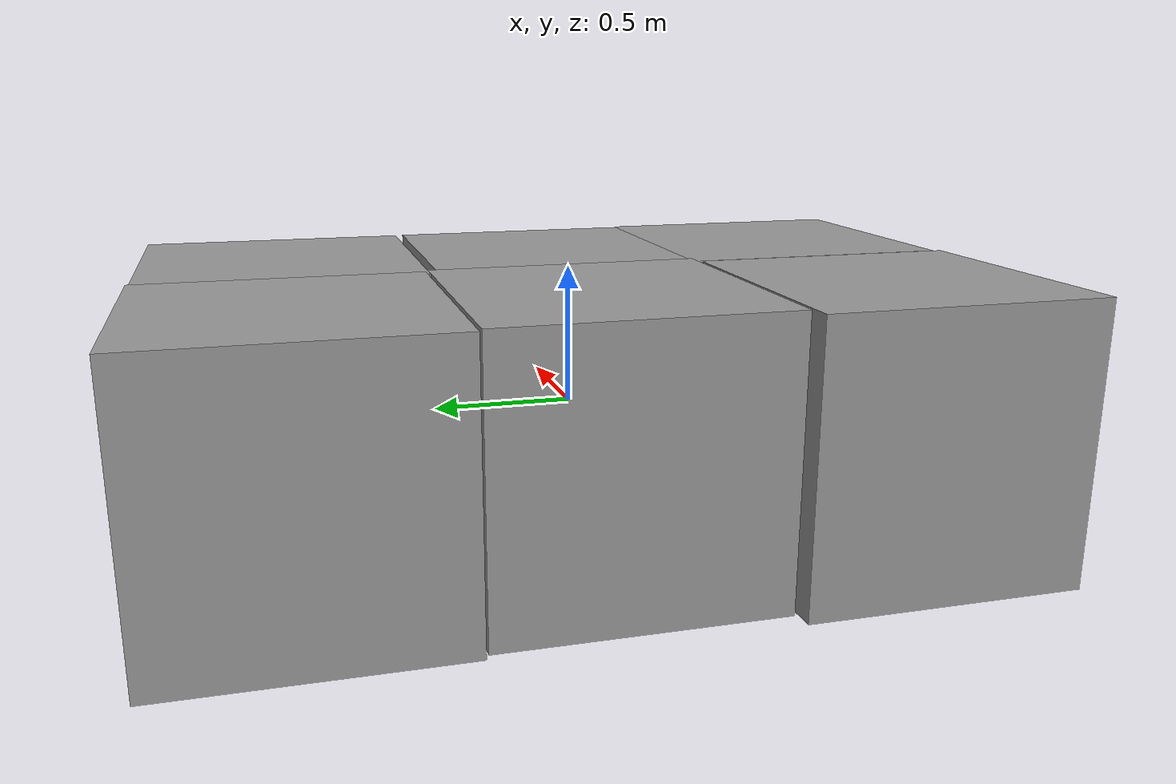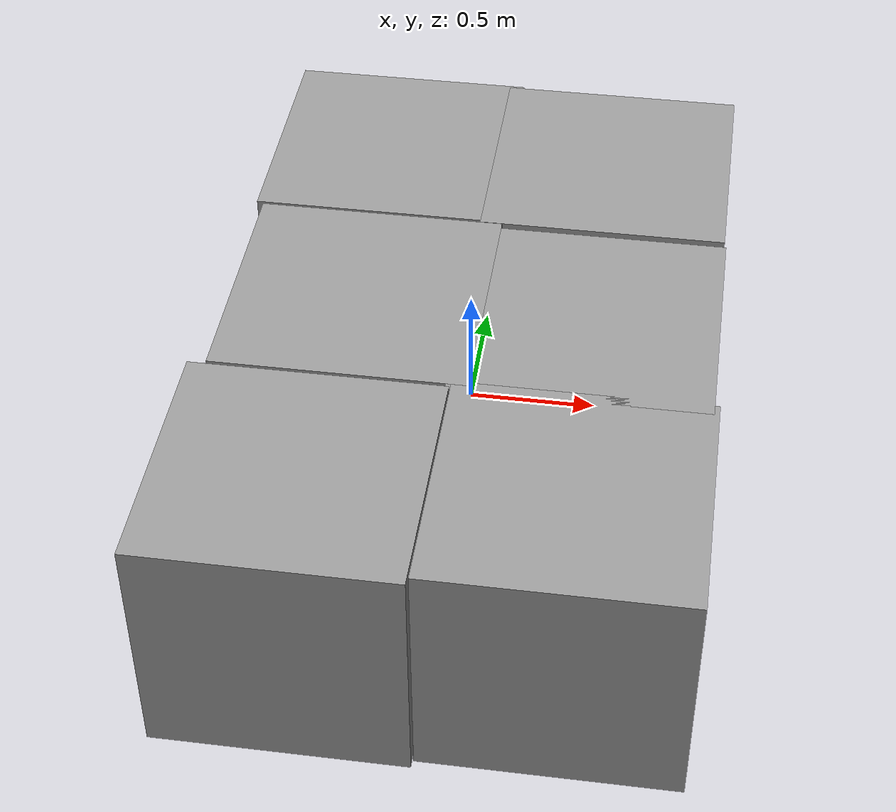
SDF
<?xml version='1.0'?>
<sdf version='1.7'>
  <model name='obj'>
    <link name='link_0'>
      <inertial>
        <mass>1</mass>
        <inertia>
          <ixx>0.166667</ixx>
          <ixy>0</ixy>
          <ixz>0</ixz>
          <iyy>0.166667</iyy>
          <iyz>0</iyz>
          <izz>0.166667</izz>
        </inertia>
      </inertial>
      <pose>-0.471707 1.01382 0 0 -0 0</pose>
      <visual name='visual'>
        <pose>0 0 0 0 -0 0</pose>
        <geometry>
          <box>
            <size>1 1 1</size>
          </box>
        </geometry>
        <material>
          <lighting>1</lighting>
          <script>
            <uri>file://media/materials/scripts/gazebo.material</uri>
            <name>Gazebo/Grey</name>
          </script>
          <shader type='pixel'/>
        </material>
        <transparency>0</transparency>
        <cast_shadows>1</cast_shadows>
      </visual>
      <collision name='collision'>
        <laser_retro>0</laser_retro>
        <max_contacts>10</max_contacts>
        <pose>0 0 0 0 -0 0</pose>
        <geometry>
          <box>
            <size>1 1 1</size>
          </box>
        </geometry>
        <surface>
          <friction>
            <ode>
              <mu>1</mu>
              <mu2>1</mu2>
              <fdir1>0 0 0</fdir1>
              <slip1>0</slip1>
              <slip2>0</slip2>
            </ode>
            <torsional>
              <coefficient>1</coefficient>
              <patch_radius>0</patch_radius>
              <surface_radius>0</surface_radius>
              <use_patch_radius>1</use_patch_radius>
              <ode>
                <slip>0</slip>
              </ode>
            </torsional>
          </friction>
          <bounce>
            <restitution_coefficient>0</restitution_coefficient>
            <threshold>1e+06</threshold>
          </bounce>
          <contact>
            <collide_without_contact>0</collide_without_contact>
            <collide_without_contact_bitmask>1</collide_without_contact_bitmask>
            <collide_bitmask>1</collide_bitmask>
            <ode>
              <soft_cfm>0</soft_cfm>
              <soft_erp>0.2</soft_erp>
              <kp>1e+13</kp>
              <kd>1</kd>
              <max_vel>0.01</max_vel>
              <min_depth>0</min_depth>
            </ode>
            <bullet>
              <split_impulse>1</split_impulse>
              <split_impulse_penetration_threshold>-0.01</split_impulse_penetration_threshold>
              <soft_cfm>0</soft_cfm>
              <soft_erp>0.2</soft_erp>
              <kp>1e+13</kp>
              <kd>1</kd>
            </bullet>
          </contact>
        </surface>
      </collision>
    </link>
    <link name='link_1'>
      <inertial>
        <mass>1</mass>
        <inertia>
          <ixx>0.166667</ixx>
          <ixy>0</ixy>
          <ixz>0</ixz>
          <iyy>0.166667</iyy>
          <iyz>0</iyz>
          <izz>0.166667</izz>
        </inertia>
      </inertial>
      <pose>0.465424 1.004 0 0 -0 0</pose>
      <visual name='visual'>
        <pose>0 0 0 0 -0 0</pose>
        <geometry>
          <box>
            <size>1 1 1</size>
          </box>
        </geometry>
        <material>
          <lighting>1</lighting>
          <script>
            <uri>file://media/materials/scripts/gazebo.material</uri>
            <name>Gazebo/Grey</name>
          </script>
          <shader type='pixel'/>
        </material>
        <transparency>0</transparency>
        <cast_shadows>1</cast_shadows>
      </visual>
      <collision name='collision'>
        <laser_retro>0</laser_retro>
        <max_contacts>10</max_contacts>
        <pose>0 0 0 0 -0 0</pose>
        <geometry>
          <box>
            <size>1 1 1</size>
          </box>
        </geometry>
        <surface>
          <friction>
            <ode>
              <mu>1</mu>
              <mu2>1</mu2>
              <fdir1>0 0 0</fdir1>
              <slip1>0</slip1>
              <slip2>0</slip2>
            </ode>
            <torsional>
              <coefficient>1</coefficient>
              <patch_radius>0</patch_radius>
              <surface_radius>0</surface_radius>
              <use_patch_radius>1</use_patch_radius>
              <ode>
                <slip>0</slip>
              </ode>
            </torsional>
          </friction>
          <bounce>
            <restitution_coefficient>0</restitution_coefficient>
            <threshold>1e+06</threshold>
          </bounce>
          <contact>
            <collide_without_contact>0</collide_without_contact>
            <collide_without_contact_bitmask>1</collide_without_contact_bitmask>
            <collide_bitmask>1</collide_bitmask>
            <ode>
              <soft_cfm>0</soft_cfm>
              <soft_erp>0.2</soft_erp>
              <kp>1e+13</kp>
              <kd>1</kd>
              <max_vel>0.01</max_vel>
              <min_depth>0</min_depth>
            </ode>
            <bullet>
              <split_impulse>1</split_impulse>
              <split_impulse_penetration_threshold>-0.01</split_impulse_penetration_threshold>
              <soft_cfm>0</soft_cfm>
              <soft_erp>0.2</soft_erp>
              <kp>1e+13</kp>
              <kd>1</kd>
            </bullet>
          </contact>
        </surface>
      </collision>
    </link>
    <link name='link_2'>
      <inertial>
        <mass>1</mass>
        <inertia>
          <ixx>0.166667</ixx>
          <ixy>0</ixy>
          <ixz>0</ixz>
          <iyy>0.166667</iyy>
          <iyz>0</iyz>
          <izz>0.166667</izz>
        </inertia>
      </inertial>
      <pose>-0.44347 0.001903 0 0 -0 0</pose>
      <visual name='visual'>
        <pose>0 0 0 0 -0 0</pose>
        <geometry>
          <box>
            <size>1 1 1</size>
          </box>
        </geometry>
        <material>
          <lighting>1</lighting>
          <script>
            <uri>file://media/materials/scripts/gazebo.material</uri>
            <name>Gazebo/Grey</name>
          </script>
          <shader type='pixel'/>
        </material>
        <transparency>0</transparency>
        <cast_shadows>1</cast_shadows>
      </visual>
      <collision name='collision'>
        <laser_retro>0</laser_retro>
        <max_contacts>10</max_contacts>
        <pose>0 0 0 0 -0 0</pose>
        <geometry>
          <box>
            <size>1 1 1</size>
          </box>
        </geometry>
        <surface>
          <friction>
            <ode>
              <mu>1</mu>
              <mu2>1</mu2>
              <fdir1>0 0 0</fdir1>
              <slip1>0</slip1>
              <slip2>0</slip2>
            </ode>
            <torsional>
              <coefficient>1</coefficient>
              <patch_radius>0</patch_radius>
              <surface_radius>0</surface_radius>
              <use_patch_radius>1</use_patch_radius>
              <ode>
                <slip>0</slip>
              </ode>
            </torsional>
          </friction>
          <bounce>
            <restitution_coefficient>0</restitution_coefficient>
            <threshold>1e+06</threshold>
          </bounce>
          <contact>
            <collide_without_contact>0</collide_without_contact>
            <collide_without_contact_bitmask>1</collide_without_contact_bitmask>
            <collide_bitmask>1</collide_bitmask>
            <ode>
              <soft_cfm>0</soft_cfm>
              <soft_erp>0.2</soft_erp>
              <kp>1e+13</kp>
              <kd>1</kd>
              <max_vel>0.01</max_vel>
              <min_depth>0</min_depth>
            </ode>
            <bullet>
              <split_impulse>1</split_impulse>
              <split_impulse_penetration_threshold>-0.01</split_impulse_penetration_threshold>
              <soft_cfm>0</soft_cfm>
              <soft_erp>0.2</soft_erp>
              <kp>1e+13</kp>
              <kd>1</kd>
            </bullet>
          </contact>
        </surface>
      </collision>
    </link>
    <link name='link_3'>
      <inertial>
        <mass>1</mass>
        <inertia>
          <ixx>0.166667</ixx>
          <ixy>0</ixy>
          <ixz>0</ixz>
          <iyy>0.166667</iyy>
          <iyz>0</iyz>
          <izz>0.166667</izz>
        </inertia>
      </inertial>
      <pose>0.471987 -0.027068 0 0 -0 0</pose>
      <visual name='visual'>
        <pose>0 0 0 0 -0 0</pose>
        <geometry>
          <box>
            <size>1 1 1</size>
          </box>
        </geometry>
        <material>
          <lighting>1</lighting>
          <script>
            <uri>file://media/materials/scripts/gazebo.material</uri>
            <name>Gazebo/Grey</name>
          </script>
          <shader type='pixel'/>
        </material>
        <transparency>0</transparency>
        <cast_shadows>1</cast_shadows>
      </visual>
      <collision name='collision'>
        <laser_retro>0</laser_retro>
        <max_contacts>10</max_contacts>
        <pose>0 0 0 0 -0 0</pose>
        <geometry>
          <box>
            <size>1 1 1</size>
          </box>
        </geometry>
        <surface>
          <friction>
            <ode>
              <mu>1</mu>
              <mu2>1</mu2>
              <fdir1>0 0 0</fdir1>
              <slip1>0</slip1>
              <slip2>0</slip2>
            </ode>
            <torsional>
              <coefficient>1</coefficient>
              <patch_radius>0</patch_radius>
              <surface_radius>0</surface_radius>
              <use_patch_radius>1</use_patch_radius>
              <ode>
                <slip>0</slip>
              </ode>
            </torsional>
          </friction>
          <bounce>
            <restitution_coefficient>0</restitution_coefficient>
            <threshold>1e+06</threshold>
          </bounce>
          <contact>
            <collide_without_contact>0</collide_without_contact>
            <collide_without_contact_bitmask>1</collide_without_contact_bitmask>
            <collide_bitmask>1</collide_bitmask>
            <ode>
              <soft_cfm>0</soft_cfm>
              <soft_erp>0.2</soft_erp>
              <kp>1e+13</kp>
              <kd>1</kd>
              <max_vel>0.01</max_vel>
              <min_depth>0</min_depth>
            </ode>
            <bullet>
              <split_impulse>1</split_impulse>
              <split_impulse_penetration_threshold>-0.01</split_impulse_penetration_threshold>
              <soft_cfm>0</soft_cfm>
              <soft_erp>0.2</soft_erp>
              <kp>1e+13</kp>
              <kd>1</kd>
            </bullet>
          </contact>
        </surface>
      </collision>
    </link>
    <link name='link_4'>
      <inertial>
        <mass>1</mass>
        <inertia>
          <ixx>0.166667</ixx>
          <ixy>0</ixy>
          <ixz>0</ixz>
          <iyy>0.166667</iyy>
          <iyz>0</iyz>
          <izz>0.166667</izz>
        </inertia>
      </inertial>
      <pose>0.491477 -0.981236 0 0 -0 0</pose>
      <visual name='visual'>
        <pose>0 0 0 0 -0 0</pose>
        <geometry>
          <box>
            <size>1 1 1</size>
          </box>
        </geometry>
        <material>
          <lighting>1</lighting>
          <script>
            <uri>file://media/materials/scripts/gazebo.material</uri>
            <name>Gazebo/Grey</name>
          </script>
          <shader type='pixel'/>
        </material>
        <transparency>0</transparency>
        <cast_shadows>1</cast_shadows>
      </visual>
      <collision name='collision'>
        <laser_retro>0</laser_retro>
        <max_contacts>10</max_contacts>
        <pose>0 0 0 0 -0 0</pose>
        <geometry>
          <box>
            <size>1 1 1</size>
          </box>
        </geometry>
        <surface>
          <friction>
            <ode>
              <mu>1</mu>
              <mu2>1</mu2>
              <fdir1>0 0 0</fdir1>
              <slip1>0</slip1>
              <slip2>0</slip2>
            </ode>
            <torsional>
              <coefficient>1</coefficient>
              <patch_radius>0</patch_radius>
              <surface_radius>0</surface_radius>
              <use_patch_radius>1</use_patch_radius>
              <ode>
                <slip>0</slip>
              </ode>
            </torsional>
          </friction>
          <bounce>
            <restitution_coefficient>0</restitution_coefficient>
            <threshold>1e+06</threshold>
          </bounce>
          <contact>
            <collide_without_contact>0</collide_without_contact>
            <collide_without_contact_bitmask>1</collide_without_contact_bitmask>
            <collide_bitmask>1</collide_bitmask>
            <ode>
              <soft_cfm>0</soft_cfm>
              <soft_erp>0.2</soft_erp>
              <kp>1e+13</kp>
              <kd>1</kd>
              <max_vel>0.01</max_vel>
              <min_depth>0</min_depth>
            </ode>
            <bullet>
              <split_impulse>1</split_impulse>
              <split_impulse_penetration_threshold>-0.01</split_impulse_penetration_threshold>
              <soft_cfm>0</soft_cfm>
              <soft_erp>0.2</soft_erp>
              <kp>1e+13</kp>
              <kd>1</kd>
            </bullet>
          </contact>
        </surface>
      </collision>
    </link>
    <link name='link_5'>
      <inertial>
        <mass>1</mass>
        <inertia>
          <ixx>0.166667</ixx>
          <ixy>0</ixy>
          <ixz>0</ixz>
          <iyy>0.166667</iyy>
          <iyz>0</iyz>
          <izz>0.166667</izz>
        </inertia>
      </inertial>
      <pose>-0.513714 -1.01141 0 0 -0 0</pose>
      <visual name='visual'>
        <pose>0 0 0 0 -0 0</pose>
        <geometry>
          <box>
            <size>1 1 1</size>
          </box>
        </geometry>
        <material>
          <lighting>1</lighting>
          <script>
            <uri>file://media/materials/scripts/gazebo.material</uri>
            <name>Gazebo/Grey</name>
          </script>
          <shader type='pixel'/>
        </material>
        <transparency>0</transparency>
        <cast_shadows>1</cast_shadows>
      </visual>
      <collision name='collision'>
        <laser_retro>0</laser_retro>
        <max_contacts>10</max_contacts>
        <pose>0 0 0 0 -0 0</pose>
        <geometry>
          <box>
            <size>1 1 1</size>
          </box>
        </geometry>
        <surface>
          <friction>
            <ode>
              <mu>1</mu>
              <mu2>1</mu2>
              <fdir1>0 0 0</fdir1>
              <slip1>0</slip1>
              <slip2>0</slip2>
            </ode>
            <torsional>
              <coefficient>1</coefficient>
              <patch_radius>0</patch_radius>
              <surface_radius>0</surface_radius>
              <use_patch_radius>1</use_patch_radius>
              <ode>
                <slip>0</slip>
              </ode>
            </torsional>
          </friction>
          <bounce>
            <restitution_coefficient>0</restitution_coefficient>
            <threshold>1e+06</threshold>
          </bounce>
          <contact>
            <collide_without_contact>0</collide_without_contact>
            <collide_without_contact_bitmask>1</collide_without_contact_bitmask>
            <collide_bitmask>1</collide_bitmask>
            <ode>
              <soft_cfm>0</soft_cfm>
              <soft_erp>0.2</soft_erp>
              <kp>1e+13</kp>
              <kd>1</kd>
              <max_vel>0.01</max_vel>
              <min_depth>0</min_depth>
            </ode>
            <bullet>
              <split_impulse>1</split_impulse>
              <split_impulse_penetration_threshold>-0.01</split_impulse_penetration_threshold>
              <soft_cfm>0</soft_cfm>
              <soft_erp>0.2</soft_erp>
              <kp>1e+13</kp>
              <kd>1</kd>
            </bullet>
          </contact>
        </surface>
      </collision>
    </link>
    <static>0</static>
    <allow_auto_disable>1</allow_auto_disable>
  </model>
</sdf>
